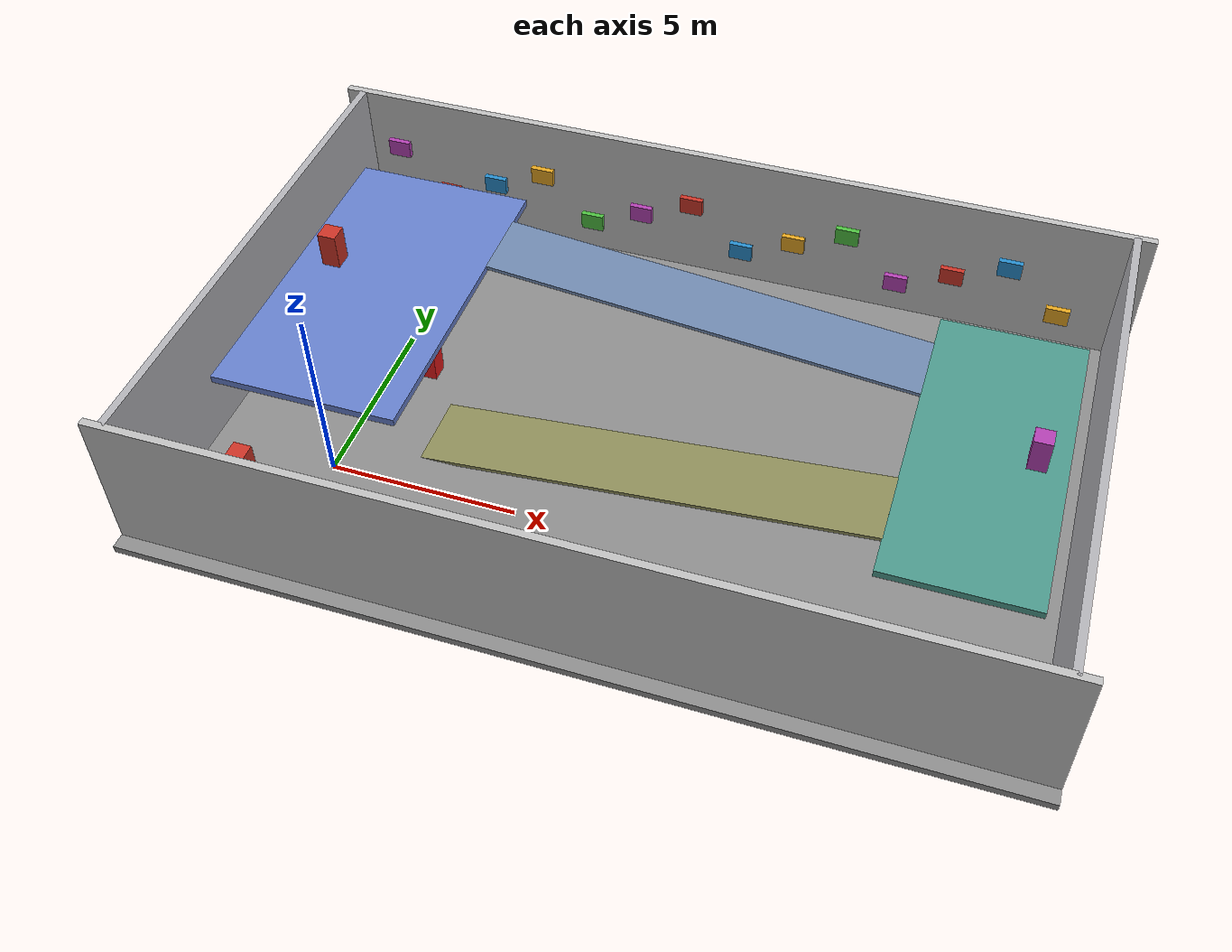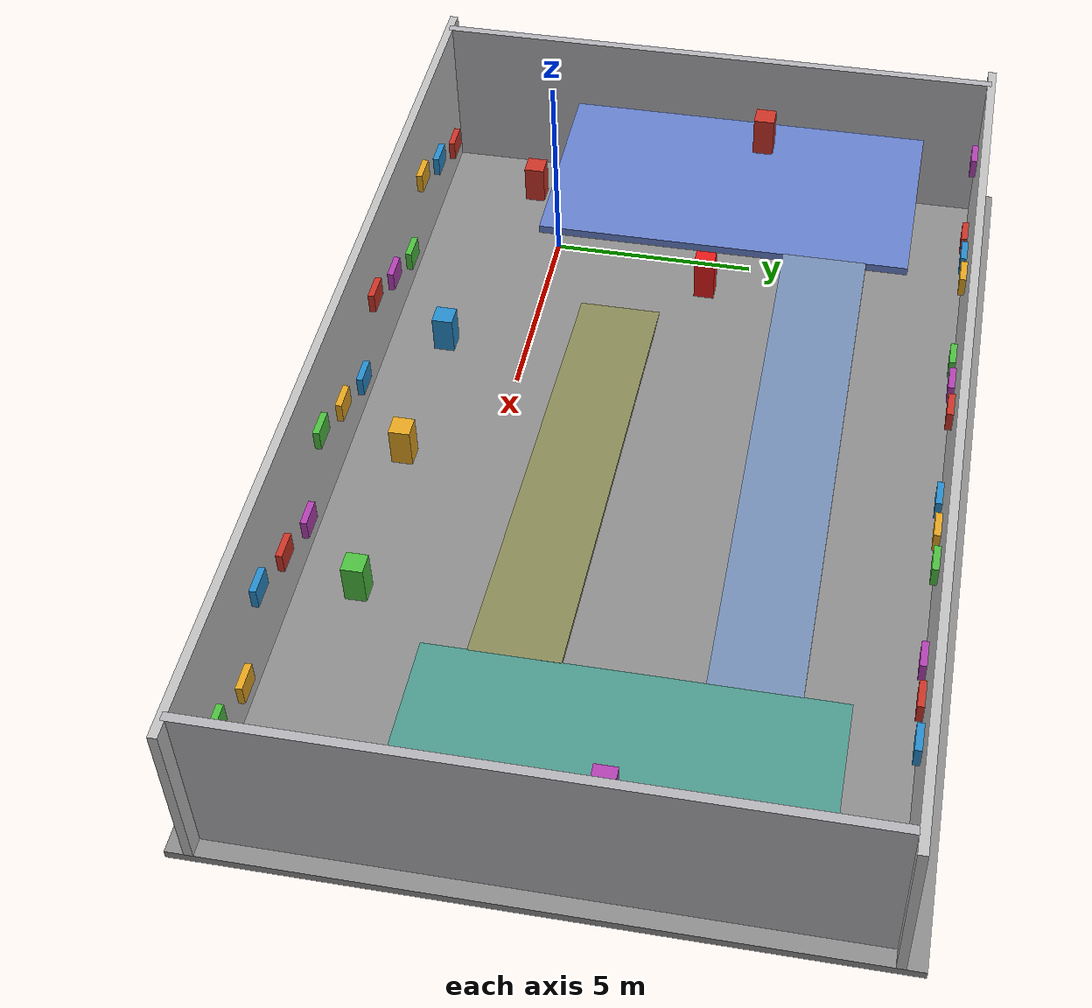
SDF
<?xml version="1.0"?><sdf version="1.9"><world name="multifloor_demo"><physics name="physics" type="ignored"><max_step_size>0.001</max_step_size><real_time_factor>1</real_time_factor></physics><gravity>0 0 -9.81</gravity><plugin filename="gz-sim-physics-system" name="gz::sim::systems::Physics"/><plugin filename="gz-sim-user-commands-system" name="gz::sim::systems::UserCommands"/><plugin filename="gz-sim-scene-broadcaster-system" name="gz::sim::systems::SceneBroadcaster"/><plugin filename="gz-sim-sensors-system" name="gz::sim::systems::Sensors"><render_engine>ogre2</render_engine></plugin><plugin filename="gz-sim-imu-system" name="gz::sim::systems::Imu"/><plugin filename="gz-sim-contact-system" name="gz::sim::systems::Contact"/><scene><ambient>0.65 0.65 0.65 1</ambient><background>0.14 0.18 0.24 1</background><shadows>false</shadows></scene><light name="sun" type="directional"><pose>0 0 12 0 0 0</pose><diffuse>0.8 0.8 0.8 1</diffuse><specular>0.1 0.1 0.1 1</specular><direction>-0.3 -0.3 -1</direction></light>
<model name="floor_1"><static>true</static><pose>7.5 3.5 -0.1 0 0 0</pose><link name="link"><inertial><mass>50</mass><inertia><ixx>2</ixx><iyy>2</iyy><izz>2</izz></inertia></inertial><collision name="collision"><geometry><box><size>23 15 0.2</size></box></geometry><surface><friction><ode><mu>1.0</mu><mu2>1.0</mu2></ode></friction></surface></collision><visual name="visual"><geometry><box><size>23 15 0.2</size></box></geometry><material><ambient>0.55 0.55 0.55 1</ambient><diffuse>0.55 0.55 0.55 1</diffuse></material></visual></link></model>
<model name="floor_2"><static>true</static><pose>16 4.5 1.1 0 0 0</pose><link name="link"><inertial><mass>50</mass><inertia><ixx>2</ixx><iyy>2</iyy><izz>2</izz></inertia></inertial><collision name="collision"><geometry><box><size>4 9 0.2</size></box></geometry><surface><friction><ode><mu>1.0</mu><mu2>1.0</mu2></ode></friction></surface></collision><visual name="visual"><geometry><box><size>4 9 0.2</size></box></geometry><material><ambient>0.3 0.6 0.55 1</ambient><diffuse>0.3 0.6 0.55 1</diffuse></material></visual></link></model>
<model name="floor_3"><static>true</static><pose>-0.5 4.5 2.3 0 0 0</pose><link name="link"><inertial><mass>50</mass><inertia><ixx>2</ixx><iyy>2</iyy><izz>2</izz></inertia></inertial><collision name="collision"><geometry><box><size>5 9 0.2</size></box></geometry><surface><friction><ode><mu>1.0</mu><mu2>1.0</mu2></ode></friction></surface></collision><visual name="visual"><geometry><box><size>5 9 0.2</size></box></geometry><material><ambient>0.4 0.5 0.8 1</ambient><diffuse>0.4 0.5 0.8 1</diffuse></material></visual></link></model>
<model name="ramp_12"><static>true</static><pose>8 2 0.5502481404895005 0 -0.09966865249116204 0</pose><link name="link"><inertial><mass>50</mass><inertia><ixx>2</ixx><iyy>2</iyy><izz>2</izz></inertia></inertial><collision name="collision"><geometry><box><size>12.099850745345067 2 0.1</size></box></geometry><surface><friction><ode><mu>1.0</mu><mu2>1.0</mu2></ode></friction></surface></collision><visual name="visual"><geometry><box><size>12.099850745345067 2 0.1</size></box></geometry><material><ambient>0.55 0.55 0.35 1</ambient><diffuse>0.55 0.55 0.35 1</diffuse></material></visual></link></model>
<model name="ramp_23"><static>true</static><pose>8 7 1.7502481404895005 0 0.09966865249116204 0</pose><link name="link"><inertial><mass>50</mass><inertia><ixx>2</ixx><iyy>2</iyy><izz>2</izz></inertia></inertial><collision name="collision"><geometry><box><size>12.099850745345067 2 0.1</size></box></geometry><surface><friction><ode><mu>1.0</mu><mu2>1.0</mu2></ode></friction></surface></collision><visual name="visual"><geometry><box><size>12.099850745345067 2 0.1</size></box></geometry><material><ambient>0.45 0.55 0.7 1</ambient><diffuse>0.45 0.55 0.7 1</diffuse></material></visual></link></model>
<model name="wall_south"><static>true</static><pose>7.5 -3.5 2 0 0 0</pose><link name="link"><inertial><mass>50</mass><inertia><ixx>2</ixx><iyy>2</iyy><izz>2</izz></inertia></inertial><collision name="collision"><geometry><box><size>23 0.2 4</size></box></geometry><surface><friction><ode><mu>1.0</mu><mu2>1.0</mu2></ode></friction></surface></collision><visual name="visual"><geometry><box><size>23 0.2 4</size></box></geometry><material><ambient>0.75 0.75 0.75 1</ambient><diffuse>0.75 0.75 0.75 1</diffuse></material></visual></link></model>
<model name="wall_north"><static>true</static><pose>7.5 10.5 2 0 0 0</pose><link name="link"><inertial><mass>50</mass><inertia><ixx>2</ixx><iyy>2</iyy><izz>2</izz></inertia></inertial><collision name="collision"><geometry><box><size>23 0.2 4</size></box></geometry><surface><friction><ode><mu>1.0</mu><mu2>1.0</mu2></ode></friction></surface></collision><visual name="visual"><geometry><box><size>23 0.2 4</size></box></geometry><material><ambient>0.75 0.75 0.75 1</ambient><diffuse>0.75 0.75 0.75 1</diffuse></material></visual></link></model>
<model name="wall_-3.5"><static>true</static><pose>-3.5 3.5 2 0 0 0</pose><link name="link"><inertial><mass>50</mass><inertia><ixx>2</ixx><iyy>2</iyy><izz>2</izz></inertia></inertial><collision name="collision"><geometry><box><size>0.2 14 4</size></box></geometry><surface><friction><ode><mu>1.0</mu><mu2>1.0</mu2></ode></friction></surface></collision><visual name="visual"><geometry><box><size>0.2 14 4</size></box></geometry><material><ambient>0.7 0.7 0.72 1</ambient><diffuse>0.7 0.7 0.72 1</diffuse></material></visual></link></model>
<model name="wall_18.5"><static>true</static><pose>18.5 3.5 2 0 0 0</pose><link name="link"><inertial><mass>50</mass><inertia><ixx>2</ixx><iyy>2</iyy><izz>2</izz></inertia></inertial><collision name="collision"><geometry><box><size>0.2 14 4</size></box></geometry><surface><friction><ode><mu>1.0</mu><mu2>1.0</mu2></ode></friction></surface></collision><visual name="visual"><geometry><box><size>0.2 14 4</size></box></geometry><material><ambient>0.7 0.7 0.72 1</ambient><diffuse>0.7 0.7 0.72 1</diffuse></material></visual></link></model>
<model name="panel_0"><static>true</static><pose>-2.5 -3.32 1.0 0 0 0</pose><link name="link"><inertial><mass>50</mass><inertia><ixx>2</ixx><iyy>2</iyy><izz>2</izz></inertia></inertial><collision name="collision"><geometry><box><size>0.65 0.15 0.5</size></box></geometry><surface><friction><ode><mu>1.0</mu><mu2>1.0</mu2></ode></friction></surface></collision><visual name="visual"><geometry><box><size>0.65 0.15 0.5</size></box></geometry><material><ambient>0.8 0.2 0.15 1</ambient><diffuse>0.8 0.2 0.15 1</diffuse></material></visual></link></model>
<model name="panel_1"><static>true</static><pose>-1.0 -3.32 1.65 0 0 0</pose><link name="link"><inertial><mass>50</mass><inertia><ixx>2</ixx><iyy>2</iyy><izz>2</izz></inertia></inertial><collision name="collision"><geometry><box><size>0.65 0.15 0.5</size></box></geometry><surface><friction><ode><mu>1.0</mu><mu2>1.0</mu2></ode></friction></surface></collision><visual name="visual"><geometry><box><size>0.65 0.15 0.5</size></box></geometry><material><ambient>0.15 0.55 0.8 1</ambient><diffuse>0.15 0.55 0.8 1</diffuse></material></visual></link></model>
<model name="panel_2"><static>true</static><pose>0.5 -3.32 2.3 0 0 0</pose><link name="link"><inertial><mass>50</mass><inertia><ixx>2</ixx><iyy>2</iyy><izz>2</izz></inertia></inertial><collision name="collision"><geometry><box><size>0.65 0.15 0.5</size></box></geometry><surface><friction><ode><mu>1.0</mu><mu2>1.0</mu2></ode></friction></surface></collision><visual name="visual"><geometry><box><size>0.65 0.15 0.5</size></box></geometry><material><ambient>0.9 0.65 0.12 1</ambient><diffuse>0.9 0.65 0.12 1</diffuse></material></visual></link></model>
<model name="panel_3"><static>true</static><pose>2.0 -3.32 1.0 0 0 0</pose><link name="link"><inertial><mass>50</mass><inertia><ixx>2</ixx><iyy>2</iyy><izz>2</izz></inertia></inertial><collision name="collision"><geometry><box><size>0.65 0.15 0.5</size></box></geometry><surface><friction><ode><mu>1.0</mu><mu2>1.0</mu2></ode></friction></surface></collision><visual name="visual"><geometry><box><size>0.65 0.15 0.5</size></box></geometry><material><ambient>0.3 0.75 0.25 1</ambient><diffuse>0.3 0.75 0.25 1</diffuse></material></visual></link></model>
<model name="panel_4"><static>true</static><pose>3.5 -3.32 1.65 0 0 0</pose><link name="link"><inertial><mass>50</mass><inertia><ixx>2</ixx><iyy>2</iyy><izz>2</izz></inertia></inertial><collision name="collision"><geometry><box><size>0.65 0.15 0.5</size></box></geometry><surface><friction><ode><mu>1.0</mu><mu2>1.0</mu2></ode></friction></surface></collision><visual name="visual"><geometry><box><size>0.65 0.15 0.5</size></box></geometry><material><ambient>0.7 0.25 0.7 1</ambient><diffuse>0.7 0.25 0.7 1</diffuse></material></visual></link></model>
<model name="panel_5"><static>true</static><pose>5.0 -3.32 2.3 0 0 0</pose><link name="link"><inertial><mass>50</mass><inertia><ixx>2</ixx><iyy>2</iyy><izz>2</izz></inertia></inertial><collision name="collision"><geometry><box><size>0.65 0.15 0.5</size></box></geometry><surface><friction><ode><mu>1.0</mu><mu2>1.0</mu2></ode></friction></surface></collision><visual name="visual"><geometry><box><size>0.65 0.15 0.5</size></box></geometry><material><ambient>0.8 0.2 0.15 1</ambient><diffuse>0.8 0.2 0.15 1</diffuse></material></visual></link></model>
<model name="panel_6"><static>true</static><pose>6.5 -3.32 1.0 0 0 0</pose><link name="link"><inertial><mass>50</mass><inertia><ixx>2</ixx><iyy>2</iyy><izz>2</izz></inertia></inertial><collision name="collision"><geometry><box><size>0.65 0.15 0.5</size></box></geometry><surface><friction><ode><mu>1.0</mu><mu2>1.0</mu2></ode></friction></surface></collision><visual name="visual"><geometry><box><size>0.65 0.15 0.5</size></box></geometry><material><ambient>0.15 0.55 0.8 1</ambient><diffuse>0.15 0.55 0.8 1</diffuse></material></visual></link></model>
<model name="panel_7"><static>true</static><pose>8.0 -3.32 1.65 0 0 0</pose><link name="link"><inertial><mass>50</mass><inertia><ixx>2</ixx><iyy>2</iyy><izz>2</izz></inertia></inertial><collision name="collision"><geometry><box><size>0.65 0.15 0.5</size></box></geometry><surface><friction><ode><mu>1.0</mu><mu2>1.0</mu2></ode></friction></surface></collision><visual name="visual"><geometry><box><size>0.65 0.15 0.5</size></box></geometry><material><ambient>0.9 0.65 0.12 1</ambient><diffuse>0.9 0.65 0.12 1</diffuse></material></visual></link></model>
<model name="panel_8"><static>true</static><pose>9.5 -3.32 2.3 0 0 0</pose><link name="link"><inertial><mass>50</mass><inertia><ixx>2</ixx><iyy>2</iyy><izz>2</izz></inertia></inertial><collision name="collision"><geometry><box><size>0.65 0.15 0.5</size></box></geometry><surface><friction><ode><mu>1.0</mu><mu2>1.0</mu2></ode></friction></surface></collision><visual name="visual"><geometry><box><size>0.65 0.15 0.5</size></box></geometry><material><ambient>0.3 0.75 0.25 1</ambient><diffuse>0.3 0.75 0.25 1</diffuse></material></visual></link></model>
<model name="panel_9"><static>true</static><pose>11.0 -3.32 1.0 0 0 0</pose><link name="link"><inertial><mass>50</mass><inertia><ixx>2</ixx><iyy>2</iyy><izz>2</izz></inertia></inertial><collision name="collision"><geometry><box><size>0.65 0.15 0.5</size></box></geometry><surface><friction><ode><mu>1.0</mu><mu2>1.0</mu2></ode></friction></surface></collision><visual name="visual"><geometry><box><size>0.65 0.15 0.5</size></box></geometry><material><ambient>0.7 0.25 0.7 1</ambient><diffuse>0.7 0.25 0.7 1</diffuse></material></visual></link></model>
<model name="panel_10"><static>true</static><pose>12.5 -3.32 1.65 0 0 0</pose><link name="link"><inertial><mass>50</mass><inertia><ixx>2</ixx><iyy>2</iyy><izz>2</izz></inertia></inertial><collision name="collision"><geometry><box><size>0.65 0.15 0.5</size></box></geometry><surface><friction><ode><mu>1.0</mu><mu2>1.0</mu2></ode></friction></surface></collision><visual name="visual"><geometry><box><size>0.65 0.15 0.5</size></box></geometry><material><ambient>0.8 0.2 0.15 1</ambient><diffuse>0.8 0.2 0.15 1</diffuse></material></visual></link></model>
<model name="panel_11"><static>true</static><pose>14.0 -3.32 2.3 0 0 0</pose><link name="link"><inertial><mass>50</mass><inertia><ixx>2</ixx><iyy>2</iyy><izz>2</izz></inertia></inertial><collision name="collision"><geometry><box><size>0.65 0.15 0.5</size></box></geometry><surface><friction><ode><mu>1.0</mu><mu2>1.0</mu2></ode></friction></surface></collision><visual name="visual"><geometry><box><size>0.65 0.15 0.5</size></box></geometry><material><ambient>0.15 0.55 0.8 1</ambient><diffuse>0.15 0.55 0.8 1</diffuse></material></visual></link></model>
<model name="panel_12"><static>true</static><pose>15.5 -3.32 1.0 0 0 0</pose><link name="link"><inertial><mass>50</mass><inertia><ixx>2</ixx><iyy>2</iyy><izz>2</izz></inertia></inertial><collision name="collision"><geometry><box><size>0.65 0.15 0.5</size></box></geometry><surface><friction><ode><mu>1.0</mu><mu2>1.0</mu2></ode></friction></surface></collision><visual name="visual"><geometry><box><size>0.65 0.15 0.5</size></box></geometry><material><ambient>0.9 0.65 0.12 1</ambient><diffuse>0.9 0.65 0.12 1</diffuse></material></visual></link></model>
<model name="panel_13"><static>true</static><pose>17.0 -3.32 1.65 0 0 0</pose><link name="link"><inertial><mass>50</mass><inertia><ixx>2</ixx><iyy>2</iyy><izz>2</izz></inertia></inertial><collision name="collision"><geometry><box><size>0.65 0.15 0.5</size></box></geometry><surface><friction><ode><mu>1.0</mu><mu2>1.0</mu2></ode></friction></surface></collision><visual name="visual"><geometry><box><size>0.65 0.15 0.5</size></box></geometry><material><ambient>0.3 0.75 0.25 1</ambient><diffuse>0.3 0.75 0.25 1</diffuse></material></visual></link></model>
<model name="panel_14"><static>true</static><pose>-2.5 10.32 2.3 0 0 0</pose><link name="link"><inertial><mass>50</mass><inertia><ixx>2</ixx><iyy>2</iyy><izz>2</izz></inertia></inertial><collision name="collision"><geometry><box><size>0.65 0.15 0.5</size></box></geometry><surface><friction><ode><mu>1.0</mu><mu2>1.0</mu2></ode></friction></surface></collision><visual name="visual"><geometry><box><size>0.65 0.15 0.5</size></box></geometry><material><ambient>0.7 0.25 0.7 1</ambient><diffuse>0.7 0.25 0.7 1</diffuse></material></visual></link></model>
<model name="panel_15"><static>true</static><pose>-1.0 10.32 1.0 0 0 0</pose><link name="link"><inertial><mass>50</mass><inertia><ixx>2</ixx><iyy>2</iyy><izz>2</izz></inertia></inertial><collision name="collision"><geometry><box><size>0.65 0.15 0.5</size></box></geometry><surface><friction><ode><mu>1.0</mu><mu2>1.0</mu2></ode></friction></surface></collision><visual name="visual"><geometry><box><size>0.65 0.15 0.5</size></box></geometry><material><ambient>0.8 0.2 0.15 1</ambient><diffuse>0.8 0.2 0.15 1</diffuse></material></visual></link></model>
<model name="panel_16"><static>true</static><pose>0.5 10.32 1.65 0 0 0</pose><link name="link"><inertial><mass>50</mass><inertia><ixx>2</ixx><iyy>2</iyy><izz>2</izz></inertia></inertial><collision name="collision"><geometry><box><size>0.65 0.15 0.5</size></box></geometry><surface><friction><ode><mu>1.0</mu><mu2>1.0</mu2></ode></friction></surface></collision><visual name="visual"><geometry><box><size>0.65 0.15 0.5</size></box></geometry><material><ambient>0.15 0.55 0.8 1</ambient><diffuse>0.15 0.55 0.8 1</diffuse></material></visual></link></model>
<model name="panel_17"><static>true</static><pose>2.0 10.32 2.3 0 0 0</pose><link name="link"><inertial><mass>50</mass><inertia><ixx>2</ixx><iyy>2</iyy><izz>2</izz></inertia></inertial><collision name="collision"><geometry><box><size>0.65 0.15 0.5</size></box></geometry><surface><friction><ode><mu>1.0</mu><mu2>1.0</mu2></ode></friction></surface></collision><visual name="visual"><geometry><box><size>0.65 0.15 0.5</size></box></geometry><material><ambient>0.9 0.65 0.12 1</ambient><diffuse>0.9 0.65 0.12 1</diffuse></material></visual></link></model>
<model name="panel_18"><static>true</static><pose>3.5 10.32 1.0 0 0 0</pose><link name="link"><inertial><mass>50</mass><inertia><ixx>2</ixx><iyy>2</iyy><izz>2</izz></inertia></inertial><collision name="collision"><geometry><box><size>0.65 0.15 0.5</size></box></geometry><surface><friction><ode><mu>1.0</mu><mu2>1.0</mu2></ode></friction></surface></collision><visual name="visual"><geometry><box><size>0.65 0.15 0.5</size></box></geometry><material><ambient>0.3 0.75 0.25 1</ambient><diffuse>0.3 0.75 0.25 1</diffuse></material></visual></link></model>
<model name="panel_19"><static>true</static><pose>5.0 10.32 1.65 0 0 0</pose><link name="link"><inertial><mass>50</mass><inertia><ixx>2</ixx><iyy>2</iyy><izz>2</izz></inertia></inertial><collision name="collision"><geometry><box><size>0.65 0.15 0.5</size></box></geometry><surface><friction><ode><mu>1.0</mu><mu2>1.0</mu2></ode></friction></surface></collision><visual name="visual"><geometry><box><size>0.65 0.15 0.5</size></box></geometry><material><ambient>0.7 0.25 0.7 1</ambient><diffuse>0.7 0.25 0.7 1</diffuse></material></visual></link></model>
<model name="panel_20"><static>true</static><pose>6.5 10.32 2.3 0 0 0</pose><link name="link"><inertial><mass>50</mass><inertia><ixx>2</ixx><iyy>2</iyy><izz>2</izz></inertia></inertial><collision name="collision"><geometry><box><size>0.65 0.15 0.5</size></box></geometry><surface><friction><ode><mu>1.0</mu><mu2>1.0</mu2></ode></friction></surface></collision><visual name="visual"><geometry><box><size>0.65 0.15 0.5</size></box></geometry><material><ambient>0.8 0.2 0.15 1</ambient><diffuse>0.8 0.2 0.15 1</diffuse></material></visual></link></model>
<model name="panel_21"><static>true</static><pose>8.0 10.32 1.0 0 0 0</pose><link name="link"><inertial><mass>50</mass><inertia><ixx>2</ixx><iyy>2</iyy><izz>2</izz></inertia></inertial><collision name="collision"><geometry><box><size>0.65 0.15 0.5</size></box></geometry><surface><friction><ode><mu>1.0</mu><mu2>1.0</mu2></ode></friction></surface></collision><visual name="visual"><geometry><box><size>0.65 0.15 0.5</size></box></geometry><material><ambient>0.15 0.55 0.8 1</ambient><diffuse>0.15 0.55 0.8 1</diffuse></material></visual></link></model>
<model name="panel_22"><static>true</static><pose>9.5 10.32 1.65 0 0 0</pose><link name="link"><inertial><mass>50</mass><inertia><ixx>2</ixx><iyy>2</iyy><izz>2</izz></inertia></inertial><collision name="collision"><geometry><box><size>0.65 0.15 0.5</size></box></geometry><surface><friction><ode><mu>1.0</mu><mu2>1.0</mu2></ode></friction></surface></collision><visual name="visual"><geometry><box><size>0.65 0.15 0.5</size></box></geometry><material><ambient>0.9 0.65 0.12 1</ambient><diffuse>0.9 0.65 0.12 1</diffuse></material></visual></link></model>
<model name="panel_23"><static>true</static><pose>11.0 10.32 2.3 0 0 0</pose><link name="link"><inertial><mass>50</mass><inertia><ixx>2</ixx><iyy>2</iyy><izz>2</izz></inertia></inertial><collision name="collision"><geometry><box><size>0.65 0.15 0.5</size></box></geometry><surface><friction><ode><mu>1.0</mu><mu2>1.0</mu2></ode></friction></surface></collision><visual name="visual"><geometry><box><size>0.65 0.15 0.5</size></box></geometry><material><ambient>0.3 0.75 0.25 1</ambient><diffuse>0.3 0.75 0.25 1</diffuse></material></visual></link></model>
<model name="panel_24"><static>true</static><pose>12.5 10.32 1.0 0 0 0</pose><link name="link"><inertial><mass>50</mass><inertia><ixx>2</ixx><iyy>2</iyy><izz>2</izz></inertia></inertial><collision name="collision"><geometry><box><size>0.65 0.15 0.5</size></box></geometry><surface><friction><ode><mu>1.0</mu><mu2>1.0</mu2></ode></friction></surface></collision><visual name="visual"><geometry><box><size>0.65 0.15 0.5</size></box></geometry><material><ambient>0.7 0.25 0.7 1</ambient><diffuse>0.7 0.25 0.7 1</diffuse></material></visual></link></model>
<model name="panel_25"><static>true</static><pose>14.0 10.32 1.65 0 0 0</pose><link name="link"><inertial><mass>50</mass><inertia><ixx>2</ixx><iyy>2</iyy><izz>2</izz></inertia></inertial><collision name="collision"><geometry><box><size>0.65 0.15 0.5</size></box></geometry><surface><friction><ode><mu>1.0</mu><mu2>1.0</mu2></ode></friction></surface></collision><visual name="visual"><geometry><box><size>0.65 0.15 0.5</size></box></geometry><material><ambient>0.8 0.2 0.15 1</ambient><diffuse>0.8 0.2 0.15 1</diffuse></material></visual></link></model>
<model name="panel_26"><static>true</static><pose>15.5 10.32 2.3 0 0 0</pose><link name="link"><inertial><mass>50</mass><inertia><ixx>2</ixx><iyy>2</iyy><izz>2</izz></inertia></inertial><collision name="collision"><geometry><box><size>0.65 0.15 0.5</size></box></geometry><surface><friction><ode><mu>1.0</mu><mu2>1.0</mu2></ode></friction></surface></collision><visual name="visual"><geometry><box><size>0.65 0.15 0.5</size></box></geometry><material><ambient>0.15 0.55 0.8 1</ambient><diffuse>0.15 0.55 0.8 1</diffuse></material></visual></link></model>
<model name="panel_27"><static>true</static><pose>17.0 10.32 1.0 0 0 0</pose><link name="link"><inertial><mass>50</mass><inertia><ixx>2</ixx><iyy>2</iyy><izz>2</izz></inertia></inertial><collision name="collision"><geometry><box><size>0.65 0.15 0.5</size></box></geometry><surface><friction><ode><mu>1.0</mu><mu2>1.0</mu2></ode></friction></surface></collision><visual name="visual"><geometry><box><size>0.65 0.15 0.5</size></box></geometry><material><ambient>0.9 0.65 0.12 1</ambient><diffuse>0.9 0.65 0.12 1</diffuse></material></visual></link></model>
<model name="landmark_0"><static>true</static><pose>-2 -1 0.5 0 0 0</pose><link name="link"><inertial><mass>50</mass><inertia><ixx>2</ixx><iyy>2</iyy><izz>2</izz></inertia></inertial><collision name="collision"><geometry><box><size>0.5 0.5 1</size></box></geometry><surface><friction><ode><mu>1.0</mu><mu2>1.0</mu2></ode></friction></surface></collision><visual name="visual"><geometry><box><size>0.5 0.5 1</size></box></geometry><material><ambient>0.8 0.2 0.15 1</ambient><diffuse>0.8 0.2 0.15 1</diffuse></material></visual></link></model>
<model name="landmark_1"><static>true</static><pose>4 -2 0.45 0 0 0</pose><link name="link"><inertial><mass>50</mass><inertia><ixx>2</ixx><iyy>2</iyy><izz>2</izz></inertia></inertial><collision name="collision"><geometry><box><size>0.5 0.5 1</size></box></geometry><surface><friction><ode><mu>1.0</mu><mu2>1.0</mu2></ode></friction></surface></collision><visual name="visual"><geometry><box><size>0.5 0.5 1</size></box></geometry><material><ambient>0.15 0.55 0.8 1</ambient><diffuse>0.15 0.55 0.8 1</diffuse></material></visual></link></model>
<model name="landmark_2"><static>true</static><pose>8 -2 0.65 0 0 0</pose><link name="link"><inertial><mass>50</mass><inertia><ixx>2</ixx><iyy>2</iyy><izz>2</izz></inertia></inertial><collision name="collision"><geometry><box><size>0.5 0.5 1</size></box></geometry><surface><friction><ode><mu>1.0</mu><mu2>1.0</mu2></ode></friction></surface></collision><visual name="visual"><geometry><box><size>0.5 0.5 1</size></box></geometry><material><ambient>0.9 0.65 0.12 1</ambient><diffuse>0.9 0.65 0.12 1</diffuse></material></visual></link></model>
<model name="landmark_3"><static>true</static><pose>12 -2 0.5 0 0 0</pose><link name="link"><inertial><mass>50</mass><inertia><ixx>2</ixx><iyy>2</iyy><izz>2</izz></inertia></inertial><collision name="collision"><geometry><box><size>0.5 0.5 1</size></box></geometry><surface><friction><ode><mu>1.0</mu><mu2>1.0</mu2></ode></friction></surface></collision><visual name="visual"><geometry><box><size>0.5 0.5 1</size></box></geometry><material><ambient>0.3 0.75 0.25 1</ambient><diffuse>0.3 0.75 0.25 1</diffuse></material></visual></link></model>
<model name="landmark_4"><static>true</static><pose>17.2 4.5 1.7 0 0 0</pose><link name="link"><inertial><mass>50</mass><inertia><ixx>2</ixx><iyy>2</iyy><izz>2</izz></inertia></inertial><collision name="collision"><geometry><box><size>0.5 0.5 1</size></box></geometry><surface><friction><ode><mu>1.0</mu><mu2>1.0</mu2></ode></friction></surface></collision><visual name="visual"><geometry><box><size>0.5 0.5 1</size></box></geometry><material><ambient>0.7 0.25 0.7 1</ambient><diffuse>0.7 0.25 0.7 1</diffuse></material></visual></link></model>
<model name="landmark_5"><static>true</static><pose>-2 5 2.9 0 0 0</pose><link name="link"><inertial><mass>50</mass><inertia><ixx>2</ixx><iyy>2</iyy><izz>2</izz></inertia></inertial><collision name="collision"><geometry><box><size>0.5 0.5 1</size></box></geometry><surface><friction><ode><mu>1.0</mu><mu2>1.0</mu2></ode></friction></surface></collision><visual name="visual"><geometry><box><size>0.5 0.5 1</size></box></geometry><material><ambient>0.8 0.2 0.15 1</ambient><diffuse>0.8 0.2 0.15 1</diffuse></material></visual></link></model>
<model name="moving_obstacle"><static>true</static><pose>1 4 0.6 0 0 0</pose><link name="link"><inertial><mass>50</mass><inertia><ixx>2</ixx><iyy>2</iyy><izz>2</izz></inertia></inertial><collision name="collision"><geometry><box><size>0.5 0.5 1.2</size></box></geometry><surface><friction><ode><mu>1.0</mu><mu2>1.0</mu2></ode></friction></surface></collision><visual name="visual"><geometry><box><size>0.5 0.5 1.2</size></box></geometry><material><ambient>0.9 0.1 0.1 1</ambient><diffuse>0.9 0.1 0.1 1</diffuse></material></visual></link></model>
</world></sdf>
